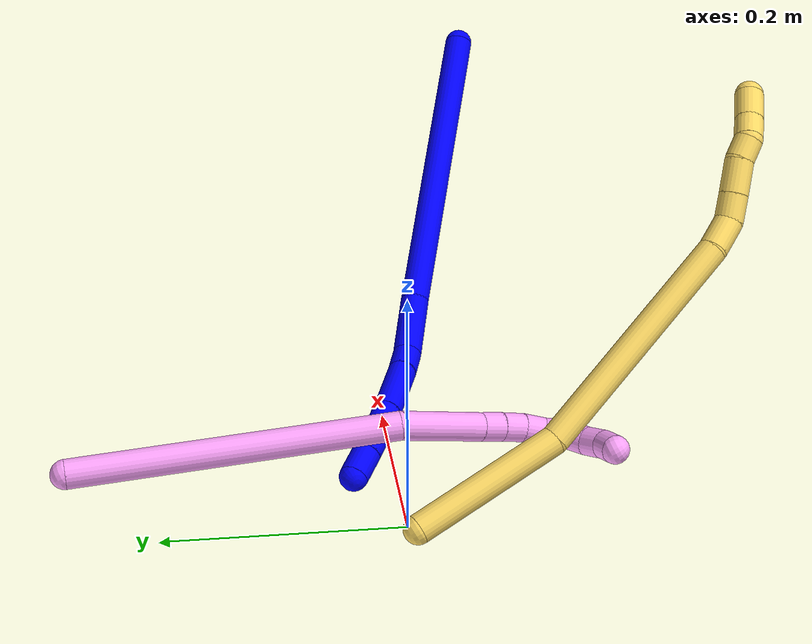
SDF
<sdf version="1.7">
 <world name="default">
  <model name="photoneo_s_sensor">
   <static>1</static>
   <pose>0 0 2 1.57079 1.57079 3.14159</pose>
   <link name="link">
    <inertial><mass>0.1</mass></inertial>
    <sensor name="sensor" type="depth">
     <update_rate>30</update_rate>
     <camera>
      <horizontal_fov>1.22</horizontal_fov>
      <image><width>1920</width><height>1200</height><format>B8G8R8</format></image>
      <clip><near>0.1</near><far>4</far></clip>
      <depth_camera><output>points</output></depth_camera>
     </camera>
     <plugin name="camera_plugin" filename="libgazebo_ros_depth_camera.so">
      <baseline>0.2</baseline>
      <alwaysOn>1</alwaysOn>
      <updateRate>0.0</updateRate>
      <cameraName>camera_ir</cameraName>
      <imageTopicName>/camera/color/image_raw</imageTopicName>
      <cameraInfoTopicName>/camera/color/camera_info</cameraInfoTopicName>
      <depthImageTopicName>/camera/depth/image_raw</depthImageTopicName>
      <depthImageCameraInfoTopicName>/camera/depth/camera_info</depthImageCameraInfoTopicName>
      <pointCloudTopicName>/camera/depth/points</pointCloudTopicName>
      <frameName>fr_optical</frameName>
      <pointCloudCutoff>0.1</pointCloudCutoff>
      <pointCloudCutoffMax>2.0</pointCloudCutoffMax>
      <distortionK1>0</distortionK1>
      <distortionK2>0</distortionK2>
      <distortionK3>0</distortionK3>
      <distortionT1>0</distortionT1>
      <distortionT2>0</distortionT2>
      <CxPrime>0</CxPrime>
      <Cx>0</Cx>
      <Cy>0</Cy>
      <focalLength>0</focalLength>
      <hackBaseline>0</hackBaseline>
     </plugin>
    </sensor>
   </link>
  </model>
  <model name="bin">
   <static>1</static>
   <link name="bottom">
    <collision name="collision-bottom">
     <pose>0 0 -0.01 0 -0 0</pose>
     <geometry><box><size>0.8 0.6 0.02</size></box></geometry>
     <surface>
      <friction><ode><mu>100</mu><mu2>100</mu2></ode></friction>
      <contact><collide_bitmask>65535</collide_bitmask></contact>
     </surface>
    </collision>
   </link>
   <link name="west_wall">
    <collision name="collision-west_wall">
     <pose>-0.41 0 0.1 0 -0 0</pose>
     <geometry><box><size>0.02 0.6 0.2</size></box></geometry>
     <surface>
      <friction><ode><mu>100</mu><mu2>100</mu2></ode></friction>
      <contact><collide_bitmask>65535</collide_bitmask></contact>
     </surface>
    </collision>
   </link>
   <link name="east_wall">
    <collision name="collision-east_wall">
     <pose>0.41 0 0.1 0 -0 0</pose>
     <geometry><box><size>0.02 0.6 0.2</size></box></geometry>
     <surface>
      <friction><ode><mu>100</mu><mu2>100</mu2></ode></friction>
      <contact><collide_bitmask>65535</collide_bitmask></contact>
     </surface>
    </collision>
   </link>
   <link name="south_wall">
    <collision name="collision-south_wall">
     <pose>0 -0.31 0.1 0 -0 0</pose>
     <geometry><box><size>0.8 0.02 0.2</size></box></geometry>
     <surface>
      <friction><ode><mu>100</mu><mu2>100</mu2></ode></friction>
      <contact><collide_bitmask>65535</collide_bitmask></contact>
     </surface>
    </collision>
   </link>
   <link name="north_wall">
    <collision name="collision-north_wall">
     <pose>0 0.31 0.1 0 -0 0</pose>
     <geometry><box><size>0.8 0.02 0.2</size></box></geometry>
     <surface>
      <friction><ode><mu>100</mu><mu2>100</mu2></ode></friction>
      <contact><collide_bitmask>65535</collide_bitmask></contact>
     </surface>
    </collision>
   </link>
  </model>
  <model name="1">
   <static>0</static>
   <link name="1">
    <collision name="collision-cylinder-e_1_1_4">
     <pose>-0.011699 0.100759 -0.098282 -2.34375 -0.082925 0.196208</pose>
     <geometry><cylinder><radius>0.0125</radius><length>0.282479</length></cylinder></geometry>
     <surface>
      <friction><ode><mu>1.16</mu><mu2>1.16</mu2><slip1>0</slip1><slip2>0</slip2></ode></friction>
      <contact><ode><kp>1e+06</kp><kd>1</kd><max_vel>0</max_vel><min_depth>0.001</min_depth></ode></contact>
     </surface>
    </collision>
    <visual name="visual-cylinder-e_1_1_4">
     <pose>-0.011699 0.100759 -0.098282 -2.34375 -0.082925 0.196208</pose>
     <geometry><cylinder><radius>0.0125</radius><length>0.282479</length></cylinder></geometry>
     <material><ambient>0 0 1 1</ambient></material>
    </visual>
    <collision name="collision-cylinder-e_2_4_5">
     <pose>-0.02692 0.219373 -0.2191 -2.4716 -0.121907 0.347097</pose>
     <geometry><cylinder><radius>0.0125</radius><length>0.057934</length></cylinder></geometry>
     <surface>
      <friction><ode><mu>1.16</mu><mu2>1.16</mu2><slip1>0</slip1><slip2>0</slip2></ode></friction>
      <contact><ode><kp>1e+06</kp><kd>1</kd><max_vel>0</max_vel><min_depth>0.001</min_depth></ode></contact>
     </surface>
    </collision>
    <visual name="visual-cylinder-e_2_4_5">
     <pose>-0.02692 0.219373 -0.2191 -2.4716 -0.121907 0.347097</pose>
     <geometry><cylinder><radius>0.0125</radius><length>0.057934</length></cylinder></geometry>
     <material><ambient>0 0 1 1</ambient></material>
    </visual>
    <collision name="collision-cylinder-e_3_5_6">
     <pose>-0.035116 0.241589 -0.253339 -2.78481 -0.358048 1.57442</pose>
     <geometry><cylinder><radius>0.0125</radius><length>0.026667</length></cylinder></geometry>
     <surface>
      <friction><ode><mu>1.16</mu><mu2>1.16</mu2><slip1>0</slip1><slip2>0</slip2></ode></friction>
      <contact><ode><kp>1e+06</kp><kd>1</kd><max_vel>0</max_vel><min_depth>0.001</min_depth></ode></contact>
     </surface>
    </collision>
    <visual name="visual-cylinder-e_3_5_6">
     <pose>-0.035116 0.241589 -0.253339 -2.78481 -0.358048 1.57442</pose>
     <geometry><cylinder><radius>0.0125</radius><length>0.026667</length></cylinder></geometry>
     <material><ambient>0 0 1 1</ambient></material>
    </visual>
    <collision name="collision-cylinder-e_4_6_7">
     <pose>-0.050143 0.257111 -0.287795 -2.68562 -0.38786 1.40488</pose>
     <geometry><cylinder><radius>0.0125</radius><length>0.054756</length></cylinder></geometry>
     <surface>
      <friction><ode><mu>1.16</mu><mu2>1.16</mu2><slip1>0</slip1><slip2>0</slip2></ode></friction>
      <contact><ode><kp>1e+06</kp><kd>1</kd><max_vel>0</max_vel><min_depth>0.001</min_depth></ode></contact>
     </surface>
    </collision>
    <visual name="visual-cylinder-e_4_6_7">
     <pose>-0.050143 0.257111 -0.287795 -2.68562 -0.38786 1.40488</pose>
     <geometry><cylinder><radius>0.0125</radius><length>0.054756</length></cylinder></geometry>
     <material><ambient>0 0 1 1</ambient></material>
    </visual>
    <collision name="collision-cylinder-e_5_7_8">
     <pose>-0.0655 0.27322 -0.320007 -2.65948 -0.438281 1.4722</pose>
     <geometry><cylinder><radius>0.0125</radius><length>0.023575</length></cylinder></geometry>
     <surface>
      <friction><ode><mu>1.16</mu><mu2>1.16</mu2><slip1>0</slip1><slip2>0</slip2></ode></friction>
      <contact><ode><kp>1e+06</kp><kd>1</kd><max_vel>0</max_vel><min_depth>0.001</min_depth></ode></contact>
     </surface>
    </collision>
    <visual name="visual-cylinder-e_5_7_8">
     <pose>-0.0655 0.27322 -0.320007 -2.65948 -0.438281 1.4722</pose>
     <geometry><cylinder><radius>0.0125</radius><length>0.023575</length></cylinder></geometry>
     <material><ambient>0 0 1 1</ambient></material>
    </visual>
    <collision name="collision-cylinder-e_6_8_9">
     <pose>-0.076128 0.285972 -0.339487 -2.48003 -0.416917 1.10419</pose>
     <geometry><cylinder><radius>0.0125</radius><length>0.027784</length></cylinder></geometry>
     <surface>
      <friction><ode><mu>1.16</mu><mu2>1.16</mu2><slip1>0</slip1><slip2>0</slip2></ode></friction>
      <contact><ode><kp>1e+06</kp><kd>1</kd><max_vel>0</max_vel><min_depth>0.001</min_depth></ode></contact>
     </surface>
    </collision>
    <visual name="visual-cylinder-e_6_8_9">
     <pose>-0.076128 0.285972 -0.339487 -2.48003 -0.416917 1.10419</pose>
     <geometry><cylinder><radius>0.0125</radius><length>0.027784</length></cylinder></geometry>
     <material><ambient>0 0 1 1</ambient></material>
    </visual>
    <collision name="collision-cylinder-e_7_9_2">
     <pose>-0.087324 0.301517 -0.358925 -2.45352 -0.428678 1.09194</pose>
     <geometry><cylinder><radius>0.0125</radius><length>0.026804</length></cylinder></geometry>
     <surface>
      <friction><ode><mu>1.16</mu><mu2>1.16</mu2><slip1>0</slip1><slip2>0</slip2></ode></friction>
      <contact><ode><kp>1e+06</kp><kd>1</kd><max_vel>0</max_vel><min_depth>0.001</min_depth></ode></contact>
     </surface>
    </collision>
    <visual name="visual-cylinder-e_7_9_2">
     <pose>-0.087324 0.301517 -0.358925 -2.45352 -0.428678 1.09194</pose>
     <geometry><cylinder><radius>0.0125</radius><length>0.026804</length></cylinder></geometry>
     <material><ambient>0 0 1 1</ambient></material>
    </visual>
    <collision name="collision-sphere-2">
     <pose>-0.092895 0.309257 -0.368341 0 -0 0</pose>
     <geometry><sphere><radius>0.0125</radius></sphere></geometry>
     <surface>
      <friction><ode><mu>1.16</mu><mu2>1.16</mu2><slip1>0</slip1><slip2>0</slip2></ode></friction>
      <contact><ode><kp>1e+06</kp><kd>1</kd><max_vel>0</max_vel><min_depth>0.001</min_depth></ode></contact>
     </surface>
    </collision>
    <visual name="visual-sphere-2">
     <pose>-0.092895 0.309257 -0.368341 0 -0 0</pose>
     <geometry><sphere><radius>0.0125</radius></sphere></geometry>
     <material><ambient>0 0 1 1</ambient></material>
    </visual>
    <collision name="collision-sphere-9">
     <pose>-0.081753 0.293776 -0.349509 0 -0 0</pose>
     <geometry><sphere><radius>0.0125</radius></sphere></geometry>
     <surface>
      <friction><ode><mu>1.16</mu><mu2>1.16</mu2><slip1>0</slip1><slip2>0</slip2></ode></friction>
      <contact><ode><kp>1e+06</kp><kd>1</kd><max_vel>0</max_vel><min_depth>0.001</min_depth></ode></contact>
     </surface>
    </collision>
    <visual name="visual-sphere-9">
     <pose>-0.081753 0.293776 -0.349509 0 -0 0</pose>
     <geometry><sphere><radius>0.0125</radius></sphere></geometry>
     <material><ambient>0 0 1 1</ambient></material>
    </visual>
    <collision name="collision-sphere-4">
     <pose>-0.023398 0.201519 -0.196564 0 -0 0</pose>
     <geometry><sphere><radius>0.0125</radius></sphere></geometry>
     <surface>
      <friction><ode><mu>1.16</mu><mu2>1.16</mu2><slip1>0</slip1><slip2>0</slip2></ode></friction>
      <contact><ode><kp>1e+06</kp><kd>1</kd><max_vel>0</max_vel><min_depth>0.001</min_depth></ode></contact>
     </surface>
    </collision>
    <visual name="visual-sphere-4">
     <pose>-0.023398 0.201519 -0.196564 0 -0 0</pose>
     <geometry><sphere><radius>0.0125</radius></sphere></geometry>
     <material><ambient>0 0 1 1</ambient></material>
    </visual>
    <collision name="collision-sphere-1">
     <geometry><sphere><radius>0.0125</radius></sphere></geometry>
     <surface>
      <friction><ode><mu>1.16</mu><mu2>1.16</mu2><slip1>0</slip1><slip2>0</slip2></ode></friction>
      <contact><ode><kp>1e+06</kp><kd>1</kd><max_vel>0</max_vel><min_depth>0.001</min_depth></ode></contact>
     </surface>
    </collision>
    <visual name="visual-sphere-1">
     <geometry><sphere><radius>0.0125</radius></sphere></geometry>
     <material><ambient>0 0 1 1</ambient></material>
    </visual>
    <collision name="collision-sphere-8">
     <pose>-0.070502 0.278169 -0.329464 0 -0 0</pose>
     <geometry><sphere><radius>0.0125</radius></sphere></geometry>
     <surface>
      <friction><ode><mu>1.16</mu><mu2>1.16</mu2><slip1>0</slip1><slip2>0</slip2></ode></friction>
      <contact><ode><kp>1e+06</kp><kd>1</kd><max_vel>0</max_vel><min_depth>0.001</min_depth></ode></contact>
     </surface>
    </collision>
    <visual name="visual-sphere-8">
     <pose>-0.070502 0.278169 -0.329464 0 -0 0</pose>
     <geometry><sphere><radius>0.0125</radius></sphere></geometry>
     <material><ambient>0 0 1 1</ambient></material>
    </visual>
    <collision name="collision-sphere-5">
     <pose>-0.030443 0.237228 -0.241637 0 -0 0</pose>
     <geometry><sphere><radius>0.0125</radius></sphere></geometry>
     <surface>
      <friction><ode><mu>1.16</mu><mu2>1.16</mu2><slip1>0</slip1><slip2>0</slip2></ode></friction>
      <contact><ode><kp>1e+06</kp><kd>1</kd><max_vel>0</max_vel><min_depth>0.001</min_depth></ode></contact>
     </surface>
    </collision>
    <visual name="visual-sphere-5">
     <pose>-0.030443 0.237228 -0.241637 0 -0 0</pose>
     <geometry><sphere><radius>0.0125</radius></sphere></geometry>
     <material><ambient>0 0 1 1</ambient></material>
    </visual>
    <collision name="collision-sphere-6">
     <pose>-0.039788 0.245951 -0.26504 0 -0 0</pose>
     <geometry><sphere><radius>0.0125</radius></sphere></geometry>
     <surface>
      <friction><ode><mu>1.16</mu><mu2>1.16</mu2><slip1>0</slip1><slip2>0</slip2></ode></friction>
      <contact><ode><kp>1e+06</kp><kd>1</kd><max_vel>0</max_vel><min_depth>0.001</min_depth></ode></contact>
     </surface>
    </collision>
    <visual name="visual-sphere-6">
     <pose>-0.039788 0.245951 -0.26504 0 -0 0</pose>
     <geometry><sphere><radius>0.0125</radius></sphere></geometry>
     <material><ambient>0 0 1 1</ambient></material>
    </visual>
    <collision name="collision-sphere-7">
     <pose>-0.060498 0.268271 -0.310551 0 -0 0</pose>
     <geometry><sphere><radius>0.0125</radius></sphere></geometry>
     <surface>
      <friction><ode><mu>1.16</mu><mu2>1.16</mu2><slip1>0</slip1><slip2>0</slip2></ode></friction>
      <contact><ode><kp>1e+06</kp><kd>1</kd><max_vel>0</max_vel><min_depth>0.001</min_depth></ode></contact>
     </surface>
    </collision>
    <visual name="visual-sphere-7">
     <pose>-0.060498 0.268271 -0.310551 0 -0 0</pose>
     <geometry><sphere><radius>0.0125</radius></sphere></geometry>
     <material><ambient>0 0 1 1</ambient></material>
    </visual>
    <inertial>
     <pose>-0.029093 0.168322 -0.179135 0 -0 0</pose>
     <mass>0.5</mass>
     <inertia>
      <ixx>0.002258</ixx>
      <ixy>0</ixy>
      <ixz>0</ixz>
      <iyy>-0.000864</iyy>
      <iyz>0</iyz>
      <izz>-0.001231</izz>
     </inertia>
    </inertial>
   </link>
   <pose>0.460942 -0.104661 0.269229 -1.52079 0.434614 -1.35628</pose>
  </model>
  <model name="4">
   <static>0</static>
   <link name="4">
    <collision name="collision-cylinder-e_1_1_4">
     <pose>0.012541 -0.062203 0.124909 0.462038 0.089632 0.021096</pose>
     <geometry><cylinder><radius>0.0125</radius><length>0.280205</length></cylinder></geometry>
     <surface>
      <friction><ode><mu>1.16</mu><mu2>1.16</mu2><slip1>0</slip1><slip2>0</slip2></ode></friction>
      <contact><ode><kp>1e+06</kp><kd>1</kd><max_vel>0</max_vel><min_depth>0.001</min_depth></ode></contact>
     </surface>
    </collision>
    <visual name="visual-cylinder-e_1_1_4">
     <pose>0.012541 -0.062203 0.124909 0.462038 0.089632 0.021096</pose>
     <geometry><cylinder><radius>0.0125</radius><length>0.280205</length></cylinder></geometry>
     <material><ambient>1 0.65098 0.996078 1</ambient></material>
    </visual>
    <collision name="collision-cylinder-e_2_4_5">
     <pose>0.03692 -0.15123 0.276367 0.790534 0.303961 0.127632</pose>
     <geometry><cylinder><radius>0.0125</radius><length>0.079107</length></cylinder></geometry>
     <surface>
      <friction><ode><mu>1.16</mu><mu2>1.16</mu2><slip1>0</slip1><slip2>0</slip2></ode></friction>
      <contact><ode><kp>1e+06</kp><kd>1</kd><max_vel>0</max_vel><min_depth>0.001</min_depth></ode></contact>
     </surface>
    </collision>
    <visual name="visual-cylinder-e_2_4_5">
     <pose>0.03692 -0.15123 0.276367 0.790534 0.303961 0.127632</pose>
     <geometry><cylinder><radius>0.0125</radius><length>0.079107</length></cylinder></geometry>
     <material><ambient>1 0.65098 0.996078 1</ambient></material>
    </visual>
    <collision name="collision-cylinder-e_3_5_6">
     <pose>0.050852 -0.184408 0.310428 0.702109 0.20966 0.077027</pose>
     <geometry><cylinder><radius>0.0125</radius><length>0.020121</length></cylinder></geometry>
     <surface>
      <friction><ode><mu>1.16</mu><mu2>1.16</mu2><slip1>0</slip1><slip2>0</slip2></ode></friction>
      <contact><ode><kp>1e+06</kp><kd>1</kd><max_vel>0</max_vel><min_depth>0.001</min_depth></ode></contact>
     </surface>
    </collision>
    <visual name="visual-cylinder-e_3_5_6">
     <pose>0.050852 -0.184408 0.310428 0.702109 0.20966 0.077027</pose>
     <geometry><cylinder><radius>0.0125</radius><length>0.020121</length></cylinder></geometry>
     <material><ambient>1 0.65098 0.996078 1</ambient></material>
    </visual>
    <collision name="collision-cylinder-e_4_6_7">
     <pose>0.054954 -0.197472 0.32512 0.751593 0.201511 0.079733</pose>
     <geometry><cylinder><radius>0.0125</radius><length>0.020059</length></cylinder></geometry>
     <surface>
      <friction><ode><mu>1.16</mu><mu2>1.16</mu2><slip1>0</slip1><slip2>0</slip2></ode></friction>
      <contact><ode><kp>1e+06</kp><kd>1</kd><max_vel>0</max_vel><min_depth>0.001</min_depth></ode></contact>
     </surface>
    </collision>
    <visual name="visual-cylinder-e_4_6_7">
     <pose>0.054954 -0.197472 0.32512 0.751593 0.201511 0.079733</pose>
     <geometry><cylinder><radius>0.0125</radius><length>0.020059</length></cylinder></geometry>
     <material><ambient>1 0.65098 0.996078 1</ambient></material>
    </visual>
    <collision name="collision-cylinder-e_5_7_8">
     <pose>0.057458 -0.211636 0.339267 0.819096 0.048671 0.021131</pose>
     <geometry><cylinder><radius>0.0125</radius><length>0.020431</length></cylinder></geometry>
     <surface>
      <friction><ode><mu>1.16</mu><mu2>1.16</mu2><slip1>0</slip1><slip2>0</slip2></ode></friction>
      <contact><ode><kp>1e+06</kp><kd>1</kd><max_vel>0</max_vel><min_depth>0.001</min_depth></ode></contact>
     </surface>
    </collision>
    <visual name="visual-cylinder-e_5_7_8">
     <pose>0.057458 -0.211636 0.339267 0.819096 0.048671 0.021131</pose>
     <geometry><cylinder><radius>0.0125</radius><length>0.020431</length></cylinder></geometry>
     <material><ambient>1 0.65098 0.996078 1</ambient></material>
    </visual>
    <collision name="collision-cylinder-e_6_8_9">
     <pose>0.05512 -0.223874 0.354569 0.521094 -0.286839 -0.076964</pose>
     <geometry><cylinder><radius>0.0125</radius><length>0.020037</length></cylinder></geometry>
     <surface>
      <friction><ode><mu>1.16</mu><mu2>1.16</mu2><slip1>0</slip1><slip2>0</slip2></ode></friction>
      <contact><ode><kp>1e+06</kp><kd>1</kd><max_vel>0</max_vel><min_depth>0.001</min_depth></ode></contact>
     </surface>
    </collision>
    <visual name="visual-cylinder-e_6_8_9">
     <pose>0.05512 -0.223874 0.354569 0.521094 -0.286839 -0.076964</pose>
     <geometry><cylinder><radius>0.0125</radius><length>0.020037</length></cylinder></geometry>
     <material><ambient>1 0.65098 0.996078 1</ambient></material>
    </visual>
    <collision name="collision-cylinder-e_7_9_10">
     <pose>0.045743 -0.232091 0.36967 0.469473 -0.711576 -0.177268</pose>
     <geometry><cylinder><radius>0.0125</radius><length>0.020039</length></cylinder></geometry>
     <surface>
      <friction><ode><mu>1.16</mu><mu2>1.16</mu2><slip1>0</slip1><slip2>0</slip2></ode></friction>
      <contact><ode><kp>1e+06</kp><kd>1</kd><max_vel>0</max_vel><min_depth>0.001</min_depth></ode></contact>
     </surface>
    </collision>
    <visual name="visual-cylinder-e_7_9_10">
     <pose>0.045743 -0.232091 0.36967 0.469473 -0.711576 -0.177268</pose>
     <geometry><cylinder><radius>0.0125</radius><length>0.020039</length></cylinder></geometry>
     <material><ambient>1 0.65098 0.996078 1</ambient></material>
    </visual>
    <collision name="collision-cylinder-e_8_10_11">
     <pose>0.03161 -0.235962 0.382933 0.067369 -0.861811 -0.03098</pose>
     <geometry><cylinder><radius>0.0125</radius><length>0.02</length></cylinder></geometry>
     <surface>
      <friction><ode><mu>1.16</mu><mu2>1.16</mu2><slip1>0</slip1><slip2>0</slip2></ode></friction>
      <contact><ode><kp>1e+06</kp><kd>1</kd><max_vel>0</max_vel><min_depth>0.001</min_depth></ode></contact>
     </surface>
    </collision>
    <visual name="visual-cylinder-e_8_10_11">
     <pose>0.03161 -0.235962 0.382933 0.067369 -0.861811 -0.03098</pose>
     <geometry><cylinder><radius>0.0125</radius><length>0.02</length></cylinder></geometry>
     <material><ambient>1 0.65098 0.996078 1</ambient></material>
    </visual>
    <collision name="collision-cylinder-e_9_11_2">
     <pose>0.01489 -0.234937 0.39324 -0.366515 -1.15036 0.239162</pose>
     <geometry><cylinder><radius>0.0125</radius><length>0.020001</length></cylinder></geometry>
     <surface>
      <friction><ode><mu>1.16</mu><mu2>1.16</mu2><slip1>0</slip1><slip2>0</slip2></ode></friction>
      <contact><ode><kp>1e+06</kp><kd>1</kd><max_vel>0</max_vel><min_depth>0.001</min_depth></ode></contact>
     </surface>
    </collision>
    <visual name="visual-cylinder-e_9_11_2">
     <pose>0.01489 -0.234937 0.39324 -0.366515 -1.15036 0.239162</pose>
     <geometry><cylinder><radius>0.0125</radius><length>0.020001</length></cylinder></geometry>
     <material><ambient>1 0.65098 0.996078 1</ambient></material>
    </visual>
    <collision name="collision-sphere-2">
     <pose>0.005761 -0.233475 0.39705 0 -0 0</pose>
     <geometry><sphere><radius>0.0125</radius></sphere></geometry>
     <surface>
      <friction><ode><mu>1.16</mu><mu2>1.16</mu2><slip1>0</slip1><slip2>0</slip2></ode></friction>
      <contact><ode><kp>1e+06</kp><kd>1</kd><max_vel>0</max_vel><min_depth>0.001</min_depth></ode></contact>
     </surface>
    </collision>
    <visual name="visual-sphere-2">
     <pose>0.005761 -0.233475 0.39705 0 -0 0</pose>
     <geometry><sphere><radius>0.0125</radius></sphere></geometry>
     <material><ambient>1 0.65098 0.996078 1</ambient></material>
    </visual>
    <collision name="collision-sphere-11">
     <pose>0.02402 -0.2364 0.389429 0 -0 0</pose>
     <geometry><sphere><radius>0.0125</radius></sphere></geometry>
     <surface>
      <friction><ode><mu>1.16</mu><mu2>1.16</mu2><slip1>0</slip1><slip2>0</slip2></ode></friction>
      <contact><ode><kp>1e+06</kp><kd>1</kd><max_vel>0</max_vel><min_depth>0.001</min_depth></ode></contact>
     </surface>
    </collision>
    <visual name="visual-sphere-11">
     <pose>0.02402 -0.2364 0.389429 0 -0 0</pose>
     <geometry><sphere><radius>0.0125</radius></sphere></geometry>
     <material><ambient>1 0.65098 0.996078 1</ambient></material>
    </visual>
    <collision name="collision-sphere-10">
     <pose>0.0392 -0.235523 0.376437 0 -0 0</pose>
     <geometry><sphere><radius>0.0125</radius></sphere></geometry>
     <surface>
      <friction><ode><mu>1.16</mu><mu2>1.16</mu2><slip1>0</slip1><slip2>0</slip2></ode></friction>
      <contact><ode><kp>1e+06</kp><kd>1</kd><max_vel>0</max_vel><min_depth>0.001</min_depth></ode></contact>
     </surface>
    </collision>
    <visual name="visual-sphere-10">
     <pose>0.0392 -0.235523 0.376437 0 -0 0</pose>
     <geometry><sphere><radius>0.0125</radius></sphere></geometry>
     <material><ambient>1 0.65098 0.996078 1</ambient></material>
    </visual>
    <collision name="collision-sphere-9">
     <pose>0.052286 -0.228658 0.362903 0 -0 0</pose>
     <geometry><sphere><radius>0.0125</radius></sphere></geometry>
     <surface>
      <friction><ode><mu>1.16</mu><mu2>1.16</mu2><slip1>0</slip1><slip2>0</slip2></ode></friction>
      <contact><ode><kp>1e+06</kp><kd>1</kd><max_vel>0</max_vel><min_depth>0.001</min_depth></ode></contact>
     </surface>
    </collision>
    <visual name="visual-sphere-9">
     <pose>0.052286 -0.228658 0.362903 0 -0 0</pose>
     <geometry><sphere><radius>0.0125</radius></sphere></geometry>
     <material><ambient>1 0.65098 0.996078 1</ambient></material>
    </visual>
    <collision name="collision-sphere-4">
     <pose>0.025082 -0.124406 0.249817 0 -0 0</pose>
     <geometry><sphere><radius>0.0125</radius></sphere></geometry>
     <surface>
      <friction><ode><mu>1.16</mu><mu2>1.16</mu2><slip1>0</slip1><slip2>0</slip2></ode></friction>
      <contact><ode><kp>1e+06</kp><kd>1</kd><max_vel>0</max_vel><min_depth>0.001</min_depth></ode></contact>
     </surface>
    </collision>
    <visual name="visual-sphere-4">
     <pose>0.025082 -0.124406 0.249817 0 -0 0</pose>
     <geometry><sphere><radius>0.0125</radius></sphere></geometry>
     <material><ambient>1 0.65098 0.996078 1</ambient></material>
    </visual>
    <collision name="collision-sphere-1">
     <geometry><sphere><radius>0.0125</radius></sphere></geometry>
     <surface>
      <friction><ode><mu>1.16</mu><mu2>1.16</mu2><slip1>0</slip1><slip2>0</slip2></ode></friction>
      <contact><ode><kp>1e+06</kp><kd>1</kd><max_vel>0</max_vel><min_depth>0.001</min_depth></ode></contact>
     </surface>
    </collision>
    <visual name="visual-sphere-1">
     <geometry><sphere><radius>0.0125</radius></sphere></geometry>
     <material><ambient>1 0.65098 0.996078 1</ambient></material>
    </visual>
    <collision name="collision-sphere-8">
     <pose>0.057955 -0.21909 0.346235 0 -0 0</pose>
     <geometry><sphere><radius>0.0125</radius></sphere></geometry>
     <surface>
      <friction><ode><mu>1.16</mu><mu2>1.16</mu2><slip1>0</slip1><slip2>0</slip2></ode></friction>
      <contact><ode><kp>1e+06</kp><kd>1</kd><max_vel>0</max_vel><min_depth>0.001</min_depth></ode></contact>
     </surface>
    </collision>
    <visual name="visual-sphere-8">
     <pose>0.057955 -0.21909 0.346235 0 -0 0</pose>
     <geometry><sphere><radius>0.0125</radius></sphere></geometry>
     <material><ambient>1 0.65098 0.996078 1</ambient></material>
    </visual>
    <collision name="collision-sphere-5">
     <pose>0.048758 -0.178053 0.302916 0 -0 0</pose>
     <geometry><sphere><radius>0.0125</radius></sphere></geometry>
     <surface>
      <friction><ode><mu>1.16</mu><mu2>1.16</mu2><slip1>0</slip1><slip2>0</slip2></ode></friction>
      <contact><ode><kp>1e+06</kp><kd>1</kd><max_vel>0</max_vel><min_depth>0.001</min_depth></ode></contact>
     </surface>
    </collision>
    <visual name="visual-sphere-5">
     <pose>0.048758 -0.178053 0.302916 0 -0 0</pose>
     <geometry><sphere><radius>0.0125</radius></sphere></geometry>
     <material><ambient>1 0.65098 0.996078 1</ambient></material>
    </visual>
    <collision name="collision-sphere-6">
     <pose>0.052946 -0.190763 0.317941 0 -0 0</pose>
     <geometry><sphere><radius>0.0125</radius></sphere></geometry>
     <surface>
      <friction><ode><mu>1.16</mu><mu2>1.16</mu2><slip1>0</slip1><slip2>0</slip2></ode></friction>
      <contact><ode><kp>1e+06</kp><kd>1</kd><max_vel>0</max_vel><min_depth>0.001</min_depth></ode></contact>
     </surface>
    </collision>
    <visual name="visual-sphere-6">
     <pose>0.052946 -0.190763 0.317941 0 -0 0</pose>
     <geometry><sphere><radius>0.0125</radius></sphere></geometry>
     <material><ambient>1 0.65098 0.996078 1</ambient></material>
    </visual>
    <collision name="collision-sphere-7">
     <pose>0.056961 -0.204182 0.332299 0 -0 0</pose>
     <geometry><sphere><radius>0.0125</radius></sphere></geometry>
     <surface>
      <friction><ode><mu>1.16</mu><mu2>1.16</mu2><slip1>0</slip1><slip2>0</slip2></ode></friction>
      <contact><ode><kp>1e+06</kp><kd>1</kd><max_vel>0</max_vel><min_depth>0.001</min_depth></ode></contact>
     </surface>
    </collision>
    <visual name="visual-sphere-7">
     <pose>0.056961 -0.204182 0.332299 0 -0 0</pose>
     <geometry><sphere><radius>0.0125</radius></sphere></geometry>
     <material><ambient>1 0.65098 0.996078 1</ambient></material>
    </visual>
    <inertial>
     <pose>0.02537 -0.119887 0.213196 0 -0 0</pose>
     <mass>0.5</mass>
     <inertia>
      <ixx>0.001931</ixx>
      <ixy>0</ixy>
      <ixz>0</ixz>
      <iyy>0.001719</iyy>
      <iyz>0</iyz>
      <izz>0.000709</izz>
     </inertia>
    </inertial>
   </link>
   <pose>0.062357 0.274427 0.033105 1.0668 -0.095354 0.006813</pose>
  </model>
  <model name="5">
   <static>0</static>
   <link name="5">
    <collision name="collision-cylinder-e_1_1_4">
     <pose>-0.00381 -0.01158 0.066082 0.173482 -0.056732 -0.004935</pose>
     <geometry><cylinder><radius>0.0125</radius><length>0.134395</length></cylinder></geometry>
     <surface>
      <friction><ode><mu>1.16</mu><mu2>1.16</mu2><slip1>0</slip1><slip2>0</slip2></ode></friction>
      <contact><ode><kp>1e+06</kp><kd>1</kd><max_vel>0</max_vel><min_depth>0.001</min_depth></ode></contact>
     </surface>
    </collision>
    <visual name="visual-cylinder-e_1_1_4">
     <pose>-0.00381 -0.01158 0.066082 0.173482 -0.056732 -0.004935</pose>
     <geometry><cylinder><radius>0.0125</radius><length>0.134395</length></cylinder></geometry>
     <material><ambient>1 0.858824 0.4 1</ambient></material>
    </visual>
    <collision name="collision-cylinder-e_2_4_5">
     <pose>0.015953 -0.048277 0.232726 0.24475 0.223631 0.027618</pose>
     <geometry><cylinder><radius>0.0125</radius><length>0.212595</length></cylinder></geometry>
     <surface>
      <friction><ode><mu>1.16</mu><mu2>1.16</mu2><slip1>0</slip1><slip2>0</slip2></ode></friction>
      <contact><ode><kp>1e+06</kp><kd>1</kd><max_vel>0</max_vel><min_depth>0.001</min_depth></ode></contact>
     </surface>
    </collision>
    <visual name="visual-cylinder-e_2_4_5">
     <pose>0.015953 -0.048277 0.232726 0.24475 0.223631 0.027618</pose>
     <geometry><cylinder><radius>0.0125</radius><length>0.212595</length></cylinder></geometry>
     <material><ambient>1 0.858824 0.4 1</ambient></material>
    </visual>
    <collision name="collision-cylinder-e_3_5_6">
     <pose>0.044015 -0.079556 0.346266 0.443334 0.302797 0.068741</pose>
     <geometry><cylinder><radius>0.0125</radius><length>0.030103</length></cylinder></geometry>
     <surface>
      <friction><ode><mu>1.16</mu><mu2>1.16</mu2><slip1>0</slip1><slip2>0</slip2></ode></friction>
      <contact><ode><kp>1e+06</kp><kd>1</kd><max_vel>0</max_vel><min_depth>0.001</min_depth></ode></contact>
     </surface>
    </collision>
    <visual name="visual-cylinder-e_3_5_6">
     <pose>0.044015 -0.079556 0.346266 0.443334 0.302797 0.068741</pose>
     <geometry><cylinder><radius>0.0125</radius><length>0.030103</length></cylinder></geometry>
     <material><ambient>1 0.858824 0.4 1</ambient></material>
    </visual>
    <collision name="collision-cylinder-e_4_6_7">
     <pose>0.056438 -0.08866 0.367386 0.346728 0.741844 0.136008</pose>
     <geometry><cylinder><radius>0.0125</radius><length>0.023487</length></cylinder></geometry>
     <surface>
      <friction><ode><mu>1.16</mu><mu2>1.16</mu2><slip1>0</slip1><slip2>0</slip2></ode></friction>
      <contact><ode><kp>1e+06</kp><kd>1</kd><max_vel>0</max_vel><min_depth>0.001</min_depth></ode></contact>
     </surface>
    </collision>
    <visual name="visual-cylinder-e_4_6_7">
     <pose>0.056438 -0.08866 0.367386 0.346728 0.741844 0.136008</pose>
     <geometry><cylinder><radius>0.0125</radius><length>0.023487</length></cylinder></geometry>
     <material><ambient>1 0.858824 0.4 1</ambient></material>
    </visual>
    <collision name="collision-cylinder-e_5_7_8">
     <pose>0.074541 -0.095793 0.385863 0.385253 0.739295 0.150857</pose>
     <geometry><cylinder><radius>0.0125</radius><length>0.030185</length></cylinder></geometry>
     <surface>
      <friction><ode><mu>1.16</mu><mu2>1.16</mu2><slip1>0</slip1><slip2>0</slip2></ode></friction>
      <contact><ode><kp>1e+06</kp><kd>1</kd><max_vel>0</max_vel><min_depth>0.001</min_depth></ode></contact>
     </surface>
    </collision>
    <visual name="visual-cylinder-e_5_7_8">
     <pose>0.074541 -0.095793 0.385863 0.385253 0.739295 0.150857</pose>
     <geometry><cylinder><radius>0.0125</radius><length>0.030185</length></cylinder></geometry>
     <material><ambient>1 0.858824 0.4 1</ambient></material>
    </visual>
    <collision name="collision-cylinder-e_6_8_9">
     <pose>0.08945 -0.102798 0.404623 0.322371 0.490218 0.081298</pose>
     <geometry><cylinder><radius>0.0125</radius><length>0.020135</length></cylinder></geometry>
     <surface>
      <friction><ode><mu>1.16</mu><mu2>1.16</mu2><slip1>0</slip1><slip2>0</slip2></ode></friction>
      <contact><ode><kp>1e+06</kp><kd>1</kd><max_vel>0</max_vel><min_depth>0.001</min_depth></ode></contact>
     </surface>
    </collision>
    <visual name="visual-cylinder-e_6_8_9">
     <pose>0.08945 -0.102798 0.404623 0.322371 0.490218 0.081298</pose>
     <geometry><cylinder><radius>0.0125</radius><length>0.020135</length></cylinder></geometry>
     <material><ambient>1 0.858824 0.4 1</ambient></material>
    </visual>
    <collision name="collision-cylinder-e_7_9_10">
     <pose>0.09887 -0.113035 0.419144 0.88313 0.453344 0.217182</pose>
     <geometry><cylinder><radius>0.0125</radius><length>0.021371</length></cylinder></geometry>
     <surface>
      <friction><ode><mu>1.16</mu><mu2>1.16</mu2><slip1>0</slip1><slip2>0</slip2></ode></friction>
      <contact><ode><kp>1e+06</kp><kd>1</kd><max_vel>0</max_vel><min_depth>0.001</min_depth></ode></contact>
     </surface>
    </collision>
    <visual name="visual-cylinder-e_7_9_10">
     <pose>0.09887 -0.113035 0.419144 0.88313 0.453344 0.217182</pose>
     <geometry><cylinder><radius>0.0125</radius><length>0.021371</length></cylinder></geometry>
     <material><ambient>1 0.858824 0.4 1</ambient></material>
    </visual>
    <collision name="collision-cylinder-e_8_10_2">
     <pose>0.110506 -0.129627 0.432972 0.870301 0.525615 0.248836</pose>
     <geometry><cylinder><radius>0.0125</radius><length>0.02773</length></cylinder></geometry>
     <surface>
      <friction><ode><mu>1.16</mu><mu2>1.16</mu2><slip1>0</slip1><slip2>0</slip2></ode></friction>
      <contact><ode><kp>1e+06</kp><kd>1</kd><max_vel>0</max_vel><min_depth>0.001</min_depth></ode></contact>
     </surface>
    </collision>
    <visual name="visual-cylinder-e_8_10_2">
     <pose>0.110506 -0.129627 0.432972 0.870301 0.525615 0.248836</pose>
     <geometry><cylinder><radius>0.0125</radius><length>0.02773</length></cylinder></geometry>
     <material><ambient>1 0.858824 0.4 1</ambient></material>
    </visual>
    <collision name="collision-sphere-2">
     <pose>0.117463 -0.138796 0.440703 0 -0 0</pose>
     <geometry><sphere><radius>0.0125</radius></sphere></geometry>
     <surface>
      <friction><ode><mu>1.16</mu><mu2>1.16</mu2><slip1>0</slip1><slip2>0</slip2></ode></friction>
      <contact><ode><kp>1e+06</kp><kd>1</kd><max_vel>0</max_vel><min_depth>0.001</min_depth></ode></contact>
     </surface>
    </collision>
    <visual name="visual-sphere-2">
     <pose>0.117463 -0.138796 0.440703 0 -0 0</pose>
     <geometry><sphere><radius>0.0125</radius></sphere></geometry>
     <material><ambient>1 0.858824 0.4 1</ambient></material>
    </visual>
    <collision name="collision-sphere-10">
     <pose>0.103549 -0.120458 0.425241 0 -0 0</pose>
     <geometry><sphere><radius>0.0125</radius></sphere></geometry>
     <surface>
      <friction><ode><mu>1.16</mu><mu2>1.16</mu2><slip1>0</slip1><slip2>0</slip2></ode></friction>
      <contact><ode><kp>1e+06</kp><kd>1</kd><max_vel>0</max_vel><min_depth>0.001</min_depth></ode></contact>
     </surface>
    </collision>
    <visual name="visual-sphere-10">
     <pose>0.103549 -0.120458 0.425241 0 -0 0</pose>
     <geometry><sphere><radius>0.0125</radius></sphere></geometry>
     <material><ambient>1 0.858824 0.4 1</ambient></material>
    </visual>
    <collision name="collision-sphere-9">
     <pose>0.09419 -0.105612 0.413047 0 -0 0</pose>
     <geometry><sphere><radius>0.0125</radius></sphere></geometry>
     <surface>
      <friction><ode><mu>1.16</mu><mu2>1.16</mu2><slip1>0</slip1><slip2>0</slip2></ode></friction>
      <contact><ode><kp>1e+06</kp><kd>1</kd><max_vel>0</max_vel><min_depth>0.001</min_depth></ode></contact>
     </surface>
    </collision>
    <visual name="visual-sphere-9">
     <pose>0.09419 -0.105612 0.413047 0 -0 0</pose>
     <geometry><sphere><radius>0.0125</radius></sphere></geometry>
     <material><ambient>1 0.858824 0.4 1</ambient></material>
    </visual>
    <collision name="collision-sphere-4">
     <pose>-0.00762 -0.023161 0.132165 0 -0 0</pose>
     <geometry><sphere><radius>0.0125</radius></sphere></geometry>
     <surface>
      <friction><ode><mu>1.16</mu><mu2>1.16</mu2><slip1>0</slip1><slip2>0</slip2></ode></friction>
      <contact><ode><kp>1e+06</kp><kd>1</kd><max_vel>0</max_vel><min_depth>0.001</min_depth></ode></contact>
     </surface>
    </collision>
    <visual name="visual-sphere-4">
     <pose>-0.00762 -0.023161 0.132165 0 -0 0</pose>
     <geometry><sphere><radius>0.0125</radius></sphere></geometry>
     <material><ambient>1 0.858824 0.4 1</ambient></material>
    </visual>
    <collision name="collision-sphere-1">
     <geometry><sphere><radius>0.0125</radius></sphere></geometry>
     <surface>
      <friction><ode><mu>1.16</mu><mu2>1.16</mu2><slip1>0</slip1><slip2>0</slip2></ode></friction>
      <contact><ode><kp>1e+06</kp><kd>1</kd><max_vel>0</max_vel><min_depth>0.001</min_depth></ode></contact>
     </surface>
    </collision>
    <visual name="visual-sphere-1">
     <geometry><sphere><radius>0.0125</radius></sphere></geometry>
     <material><ambient>1 0.858824 0.4 1</ambient></material>
    </visual>
    <collision name="collision-sphere-8">
     <pose>0.08471 -0.099984 0.396198 0 -0 0</pose>
     <geometry><sphere><radius>0.0125</radius></sphere></geometry>
     <surface>
      <friction><ode><mu>1.16</mu><mu2>1.16</mu2><slip1>0</slip1><slip2>0</slip2></ode></friction>
      <contact><ode><kp>1e+06</kp><kd>1</kd><max_vel>0</max_vel><min_depth>0.001</min_depth></ode></contact>
     </surface>
    </collision>
    <visual name="visual-sphere-8">
     <pose>0.08471 -0.099984 0.396198 0 -0 0</pose>
     <geometry><sphere><radius>0.0125</radius></sphere></geometry>
     <material><ambient>1 0.858824 0.4 1</ambient></material>
    </visual>
    <collision name="collision-sphere-5">
     <pose>0.039527 -0.073393 0.333288 0 -0 0</pose>
     <geometry><sphere><radius>0.0125</radius></sphere></geometry>
     <surface>
      <friction><ode><mu>1.16</mu><mu2>1.16</mu2><slip1>0</slip1><slip2>0</slip2></ode></friction>
      <contact><ode><kp>1e+06</kp><kd>1</kd><max_vel>0</max_vel><min_depth>0.001</min_depth></ode></contact>
     </surface>
    </collision>
    <visual name="visual-sphere-5">
     <pose>0.039527 -0.073393 0.333288 0 -0 0</pose>
     <geometry><sphere><radius>0.0125</radius></sphere></geometry>
     <material><ambient>1 0.858824 0.4 1</ambient></material>
    </visual>
    <collision name="collision-sphere-6">
     <pose>0.048504 -0.085718 0.359244 0 -0 0</pose>
     <geometry><sphere><radius>0.0125</radius></sphere></geometry>
     <surface>
      <friction><ode><mu>1.16</mu><mu2>1.16</mu2><slip1>0</slip1><slip2>0</slip2></ode></friction>
      <contact><ode><kp>1e+06</kp><kd>1</kd><max_vel>0</max_vel><min_depth>0.001</min_depth></ode></contact>
     </surface>
    </collision>
    <visual name="visual-sphere-6">
     <pose>0.048504 -0.085718 0.359244 0 -0 0</pose>
     <geometry><sphere><radius>0.0125</radius></sphere></geometry>
     <material><ambient>1 0.858824 0.4 1</ambient></material>
    </visual>
    <collision name="collision-sphere-7">
     <pose>0.064372 -0.091602 0.375528 0 -0 0</pose>
     <geometry><sphere><radius>0.0125</radius></sphere></geometry>
     <surface>
      <friction><ode><mu>1.16</mu><mu2>1.16</mu2><slip1>0</slip1><slip2>0</slip2></ode></friction>
      <contact><ode><kp>1e+06</kp><kd>1</kd><max_vel>0</max_vel><min_depth>0.001</min_depth></ode></contact>
     </surface>
    </collision>
    <visual name="visual-sphere-7">
     <pose>0.064372 -0.091602 0.375528 0 -0 0</pose>
     <geometry><sphere><radius>0.0125</radius></sphere></geometry>
     <material><ambient>1 0.858824 0.4 1</ambient></material>
    </visual>
    <inertial>
     <pose>0.029517 -0.054537 0.236336 0 -0 0</pose>
     <mass>0.5</mass>
     <inertia><ixx>0.00104</ixx><ixy>0</ixy><ixz>0</ixz><iyy>0.001015</iyy><iyz>0</iyz><izz>9.2e-05</izz></inertia>
    </inertial>
   </link>
   <pose>-0.023926 -0.005652 0.011495 0.403883 -1.04193 1.29831</pose>
  </model>
 </world>
</sdf>
